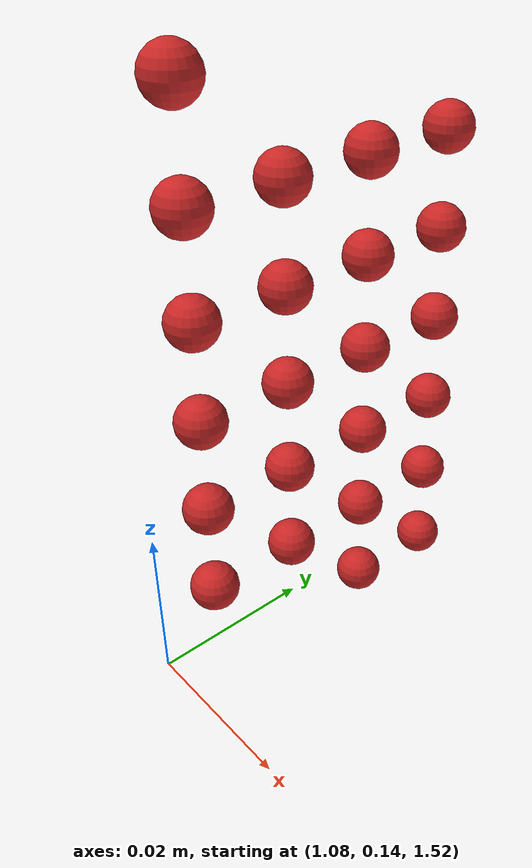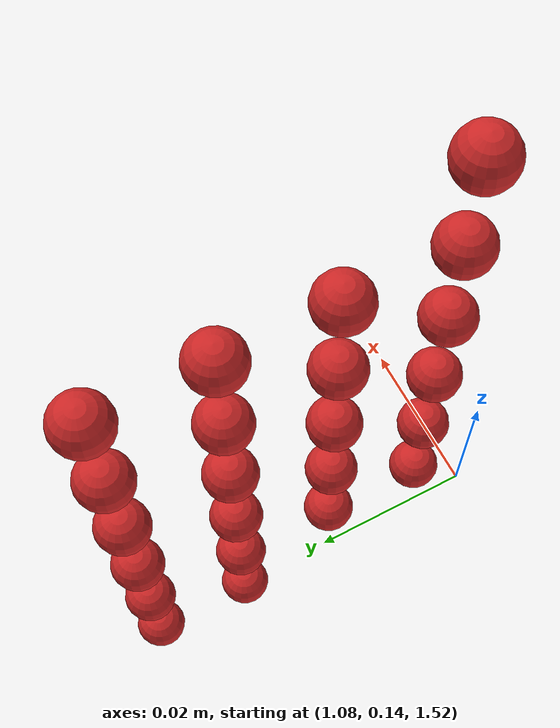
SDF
<sdf version="1.4">
 <world name="default">
  <model name="ground_plane">
   <static>1</static>
   <link name="link">
    <collision name="collision">
     <geometry><plane><normal>0 0 1</normal><size>100 100</size></plane></geometry>
     <surface><friction><ode><mu>100</mu><mu2>50</mu2></ode></friction></surface>
    </collision>
    <visual name="visual">
     <cast_shadows>0</cast_shadows>
     <geometry><plane><normal>0 0 1</normal><size>100 100</size></plane></geometry>
     <material>
      <script><uri>file://media/materials/scripts/gazebo.material</uri><name>Gazebo/Grey</name></script>
     </material>
    </visual>
    <velocity_decay><linear>0</linear><angular>0</angular></velocity_decay>
   </link>
  </model>
  <model name="sphere72">
   <pose>0.546545 0.091517 0.758885 0 0 0</pose>
   <link name="link">
    <pose>0.534545 0.079517 0.758885 0 0 0</pose>
    <inertial>
     <mass>0.001</mass>
     <inertia>
      <ixx>0.004</ixx>
      <ixy>0.000000</ixy>
      <ixz>0.000000</ixz>
      <iyy>0.004</iyy>
      <iyz>0.000000</iyz>
      <izz>0.004</izz>
     </inertia>
    </inertial>
    <collision name="collision">
     <surface>
      <contact><ode><kp>10000000000.000000</kp><kd>1</kd></ode></contact>
      <friction><ode><mu>0.01</mu><mu2>0.01</mu2></ode></friction>
     </surface>
     <geometry><sphere><radius>0.003</radius></sphere></geometry>
    </collision>
    <visual name="visual">
     <geometry><sphere><radius>0.003</radius></sphere></geometry>
     <material>
      <script><uri>file://media/materials/scripts/gazebo.material</uri><name>Gazebo/Red</name></script>
     </material>
    </visual>
   </link>
  </model>
  <model name="sphere76">
   <pose>0.546545 0.097517 0.758885 0 0 0</pose>
   <link name="link">
    <pose>0.534545 0.085517 0.758885 0 0 0</pose>
    <inertial>
     <mass>0.001</mass>
     <inertia>
      <ixx>0.004</ixx>
      <ixy>0.000000</ixy>
      <ixz>0.000000</ixz>
      <iyy>0.004</iyy>
      <iyz>0.000000</iyz>
      <izz>0.004</izz>
     </inertia>
    </inertial>
    <collision name="collision">
     <surface>
      <contact><ode><kp>10000000000.000000</kp><kd>1</kd></ode></contact>
      <friction><ode><mu>0.01</mu><mu2>0.01</mu2></ode></friction>
     </surface>
     <geometry><sphere><radius>0.003</radius></sphere></geometry>
    </collision>
    <visual name="visual">
     <geometry><sphere><radius>0.003</radius></sphere></geometry>
     <material>
      <script><uri>file://media/materials/scripts/gazebo.material</uri><name>Gazebo/Red</name></script>
     </material>
    </visual>
   </link>
  </model>
  <model name="sphere80">
   <pose>0.546545 0.079517 0.764885 0 0 0</pose>
   <link name="link">
    <pose>0.534545 0.067517 0.764885 0 0 0</pose>
    <inertial>
     <mass>0.001</mass>
     <inertia>
      <ixx>0.004</ixx>
      <ixy>0.000000</ixy>
      <ixz>0.000000</ixz>
      <iyy>0.004</iyy>
      <iyz>0.000000</iyz>
      <izz>0.004</izz>
     </inertia>
    </inertial>
    <collision name="collision">
     <surface>
      <contact><ode><kp>10000000000.000000</kp><kd>1</kd></ode></contact>
      <friction><ode><mu>0.01</mu><mu2>0.01</mu2></ode></friction>
     </surface>
     <geometry><sphere><radius>0.003</radius></sphere></geometry>
    </collision>
    <visual name="visual">
     <geometry><sphere><radius>0.003</radius></sphere></geometry>
     <material>
      <script><uri>file://media/materials/scripts/gazebo.material</uri><name>Gazebo/Red</name></script>
     </material>
    </visual>
   </link>
  </model>
  <model name="sphere84">
   <pose>0.546545 0.085517 0.764885 0 0 0</pose>
   <link name="link">
    <pose>0.534545 0.073517 0.764885 0 0 0</pose>
    <inertial>
     <mass>0.001</mass>
     <inertia>
      <ixx>0.004</ixx>
      <ixy>0.000000</ixy>
      <ixz>0.000000</ixz>
      <iyy>0.004</iyy>
      <iyz>0.000000</iyz>
      <izz>0.004</izz>
     </inertia>
    </inertial>
    <collision name="collision">
     <surface>
      <contact><ode><kp>10000000000.000000</kp><kd>1</kd></ode></contact>
      <friction><ode><mu>0.01</mu><mu2>0.01</mu2></ode></friction>
     </surface>
     <geometry><sphere><radius>0.003</radius></sphere></geometry>
    </collision>
    <visual name="visual">
     <geometry><sphere><radius>0.003</radius></sphere></geometry>
     <material>
      <script><uri>file://media/materials/scripts/gazebo.material</uri><name>Gazebo/Red</name></script>
     </material>
    </visual>
   </link>
  </model>
  <model name="sphere88">
   <pose>0.546545 0.091517 0.764885 0 0 0</pose>
   <link name="link">
    <pose>0.534545 0.079517 0.764885 0 0 0</pose>
    <inertial>
     <mass>0.001</mass>
     <inertia>
      <ixx>0.004</ixx>
      <ixy>0.000000</ixy>
      <ixz>0.000000</ixz>
      <iyy>0.004</iyy>
      <iyz>0.000000</iyz>
      <izz>0.004</izz>
     </inertia>
    </inertial>
    <collision name="collision">
     <surface>
      <contact><ode><kp>10000000000.000000</kp><kd>1</kd></ode></contact>
      <friction><ode><mu>0.01</mu><mu2>0.01</mu2></ode></friction>
     </surface>
     <geometry><sphere><radius>0.003</radius></sphere></geometry>
    </collision>
    <visual name="visual">
     <geometry><sphere><radius>0.003</radius></sphere></geometry>
     <material>
      <script><uri>file://media/materials/scripts/gazebo.material</uri><name>Gazebo/Red</name></script>
     </material>
    </visual>
   </link>
  </model>
  <model name="sphere92">
   <pose>0.546545 0.097517 0.764885 0 0 0</pose>
   <link name="link">
    <pose>0.534545 0.085517 0.764885 0 0 0</pose>
    <inertial>
     <mass>0.001</mass>
     <inertia>
      <ixx>0.004</ixx>
      <ixy>0.000000</ixy>
      <ixz>0.000000</ixz>
      <iyy>0.004</iyy>
      <iyz>0.000000</iyz>
      <izz>0.004</izz>
     </inertia>
    </inertial>
    <collision name="collision">
     <surface>
      <contact><ode><kp>10000000000.000000</kp><kd>1</kd></ode></contact>
      <friction><ode><mu>0.01</mu><mu2>0.01</mu2></ode></friction>
     </surface>
     <geometry><sphere><radius>0.003</radius></sphere></geometry>
    </collision>
    <visual name="visual">
     <geometry><sphere><radius>0.003</radius></sphere></geometry>
     <material>
      <script><uri>file://media/materials/scripts/gazebo.material</uri><name>Gazebo/Red</name></script>
     </material>
    </visual>
   </link>
  </model>
  <model name="sphere96">
   <pose>0.546545 0.079517 0.770885 0 0 0</pose>
   <link name="link">
    <pose>0.534545 0.067517 0.770885 0 0 0</pose>
    <inertial>
     <mass>0.001</mass>
     <inertia>
      <ixx>0.004</ixx>
      <ixy>0.000000</ixy>
      <ixz>0.000000</ixz>
      <iyy>0.004</iyy>
      <iyz>0.000000</iyz>
      <izz>0.004</izz>
     </inertia>
    </inertial>
    <collision name="collision">
     <surface>
      <contact><ode><kp>10000000000.000000</kp><kd>1</kd></ode></contact>
      <friction><ode><mu>0.01</mu><mu2>0.01</mu2></ode></friction>
     </surface>
     <geometry><sphere><radius>0.003</radius></sphere></geometry>
    </collision>
    <visual name="visual">
     <geometry><sphere><radius>0.003</radius></sphere></geometry>
     <material>
      <script><uri>file://media/materials/scripts/gazebo.material</uri><name>Gazebo/Red</name></script>
     </material>
    </visual>
   </link>
  </model>
  <model name="sphere100">
   <pose>0.546545 0.085517 0.770885 0 0 0</pose>
   <link name="link">
    <pose>0.534545 0.073517 0.770885 0 0 0</pose>
    <inertial>
     <mass>0.001</mass>
     <inertia>
      <ixx>0.004</ixx>
      <ixy>0.000000</ixy>
      <ixz>0.000000</ixz>
      <iyy>0.004</iyy>
      <iyz>0.000000</iyz>
      <izz>0.004</izz>
     </inertia>
    </inertial>
    <collision name="collision">
     <surface>
      <contact><ode><kp>10000000000.000000</kp><kd>1</kd></ode></contact>
      <friction><ode><mu>0.01</mu><mu2>0.01</mu2></ode></friction>
     </surface>
     <geometry><sphere><radius>0.003</radius></sphere></geometry>
    </collision>
    <visual name="visual">
     <geometry><sphere><radius>0.003</radius></sphere></geometry>
     <material>
      <script><uri>file://media/materials/scripts/gazebo.material</uri><name>Gazebo/Red</name></script>
     </material>
    </visual>
   </link>
  </model>
  <model name="sphere104">
   <pose>0.546545 0.091517 0.770885 0 0 0</pose>
   <link name="link">
    <pose>0.534545 0.079517 0.770885 0 0 0</pose>
    <inertial>
     <mass>0.001</mass>
     <inertia>
      <ixx>0.004</ixx>
      <ixy>0.000000</ixy>
      <ixz>0.000000</ixz>
      <iyy>0.004</iyy>
      <iyz>0.000000</iyz>
      <izz>0.004</izz>
     </inertia>
    </inertial>
    <collision name="collision">
     <surface>
      <contact><ode><kp>10000000000.000000</kp><kd>1</kd></ode></contact>
      <friction><ode><mu>0.01</mu><mu2>0.01</mu2></ode></friction>
     </surface>
     <geometry><sphere><radius>0.003</radius></sphere></geometry>
    </collision>
    <visual name="visual">
     <geometry><sphere><radius>0.003</radius></sphere></geometry>
     <material>
      <script><uri>file://media/materials/scripts/gazebo.material</uri><name>Gazebo/Red</name></script>
     </material>
    </visual>
   </link>
  </model>
  <model name="sphere108">
   <pose>0.546545 0.097517 0.770885 0 0 0</pose>
   <link name="link">
    <pose>0.534545 0.085517 0.770885 0 0 0</pose>
    <inertial>
     <mass>0.001</mass>
     <inertia>
      <ixx>0.004</ixx>
      <ixy>0.000000</ixy>
      <ixz>0.000000</ixz>
      <iyy>0.004</iyy>
      <iyz>0.000000</iyz>
      <izz>0.004</izz>
     </inertia>
    </inertial>
    <collision name="collision">
     <surface>
      <contact><ode><kp>10000000000.000000</kp><kd>1</kd></ode></contact>
      <friction><ode><mu>0.01</mu><mu2>0.01</mu2></ode></friction>
     </surface>
     <geometry><sphere><radius>0.003</radius></sphere></geometry>
    </collision>
    <visual name="visual">
     <geometry><sphere><radius>0.003</radius></sphere></geometry>
     <material>
      <script><uri>file://media/materials/scripts/gazebo.material</uri><name>Gazebo/Red</name></script>
     </material>
    </visual>
   </link>
  </model>
  <model name="sphere112">
   <pose>0.546545 0.079517 0.776885 0 0 0</pose>
   <link name="link">
    <pose>0.534545 0.067517 0.776885 0 0 0</pose>
    <inertial>
     <mass>0.001</mass>
     <inertia>
      <ixx>0.004</ixx>
      <ixy>0.000000</ixy>
      <ixz>0.000000</ixz>
      <iyy>0.004</iyy>
      <iyz>0.000000</iyz>
      <izz>0.004</izz>
     </inertia>
    </inertial>
    <collision name="collision">
     <surface>
      <contact><ode><kp>10000000000.000000</kp><kd>1</kd></ode></contact>
      <friction><ode><mu>0.01</mu><mu2>0.01</mu2></ode></friction>
     </surface>
     <geometry><sphere><radius>0.003</radius></sphere></geometry>
    </collision>
    <visual name="visual">
     <geometry><sphere><radius>0.003</radius></sphere></geometry>
     <material>
      <script><uri>file://media/materials/scripts/gazebo.material</uri><name>Gazebo/Red</name></script>
     </material>
    </visual>
   </link>
  </model>
  <model name="sphere116">
   <pose>0.546545 0.085517 0.776885 0 0 0</pose>
   <link name="link">
    <pose>0.534545 0.073517 0.776885 0 0 0</pose>
    <inertial>
     <mass>0.001</mass>
     <inertia>
      <ixx>0.004</ixx>
      <ixy>0.000000</ixy>
      <ixz>0.000000</ixz>
      <iyy>0.004</iyy>
      <iyz>0.000000</iyz>
      <izz>0.004</izz>
     </inertia>
    </inertial>
    <collision name="collision">
     <surface>
      <contact><ode><kp>10000000000.000000</kp><kd>1</kd></ode></contact>
      <friction><ode><mu>0.01</mu><mu2>0.01</mu2></ode></friction>
     </surface>
     <geometry><sphere><radius>0.003</radius></sphere></geometry>
    </collision>
    <visual name="visual">
     <geometry><sphere><radius>0.003</radius></sphere></geometry>
     <material>
      <script><uri>file://media/materials/scripts/gazebo.material</uri><name>Gazebo/Red</name></script>
     </material>
    </visual>
   </link>
  </model>
  <model name="sphere120">
   <pose>0.546545 0.091517 0.776885 0 0 0</pose>
   <link name="link">
    <pose>0.534545 0.079517 0.776885 0 0 0</pose>
    <inertial>
     <mass>0.001</mass>
     <inertia>
      <ixx>0.004</ixx>
      <ixy>0.000000</ixy>
      <ixz>0.000000</ixz>
      <iyy>0.004</iyy>
      <iyz>0.000000</iyz>
      <izz>0.004</izz>
     </inertia>
    </inertial>
    <collision name="collision">
     <surface>
      <contact><ode><kp>10000000000.000000</kp><kd>1</kd></ode></contact>
      <friction><ode><mu>0.01</mu><mu2>0.01</mu2></ode></friction>
     </surface>
     <geometry><sphere><radius>0.003</radius></sphere></geometry>
    </collision>
    <visual name="visual">
     <geometry><sphere><radius>0.003</radius></sphere></geometry>
     <material>
      <script><uri>file://media/materials/scripts/gazebo.material</uri><name>Gazebo/Red</name></script>
     </material>
    </visual>
   </link>
  </model>
  <model name="sphere124">
   <pose>0.546545 0.097517 0.776885 0 0 0</pose>
   <link name="link">
    <pose>0.534545 0.085517 0.776885 0 0 0</pose>
    <inertial>
     <mass>0.001</mass>
     <inertia>
      <ixx>0.004</ixx>
      <ixy>0.000000</ixy>
      <ixz>0.000000</ixz>
      <iyy>0.004</iyy>
      <iyz>0.000000</iyz>
      <izz>0.004</izz>
     </inertia>
    </inertial>
    <collision name="collision">
     <surface>
      <contact><ode><kp>10000000000.000000</kp><kd>1</kd></ode></contact>
      <friction><ode><mu>0.01</mu><mu2>0.01</mu2></ode></friction>
     </surface>
     <geometry><sphere><radius>0.003</radius></sphere></geometry>
    </collision>
    <visual name="visual">
     <geometry><sphere><radius>0.003</radius></sphere></geometry>
     <material>
      <script><uri>file://media/materials/scripts/gazebo.material</uri><name>Gazebo/Red</name></script>
     </material>
    </visual>
   </link>
  </model>
  <model name="sphere128">
   <pose>0.546545 0.079517 0.782885 0 0 0</pose>
   <link name="link">
    <pose>0.534545 0.067517 0.782885 0 0 0</pose>
    <inertial>
     <mass>0.001</mass>
     <inertia>
      <ixx>0.004</ixx>
      <ixy>0.000000</ixy>
      <ixz>0.000000</ixz>
      <iyy>0.004</iyy>
      <iyz>0.000000</iyz>
      <izz>0.004</izz>
     </inertia>
    </inertial>
    <collision name="collision">
     <surface>
      <contact><ode><kp>10000000000.000000</kp><kd>1</kd></ode></contact>
      <friction><ode><mu>0.01</mu><mu2>0.01</mu2></ode></friction>
     </surface>
     <geometry><sphere><radius>0.003</radius></sphere></geometry>
    </collision>
    <visual name="visual">
     <geometry><sphere><radius>0.003</radius></sphere></geometry>
     <material>
      <script><uri>file://media/materials/scripts/gazebo.material</uri><name>Gazebo/Red</name></script>
     </material>
    </visual>
   </link>
  </model>
  <model name="sphere132">
   <pose>0.546545 0.085517 0.782885 0 0 0</pose>
   <link name="link">
    <pose>0.534545 0.073517 0.782885 0 0 0</pose>
    <inertial>
     <mass>0.001</mass>
     <inertia>
      <ixx>0.004</ixx>
      <ixy>0.000000</ixy>
      <ixz>0.000000</ixz>
      <iyy>0.004</iyy>
      <iyz>0.000000</iyz>
      <izz>0.004</izz>
     </inertia>
    </inertial>
    <collision name="collision">
     <surface>
      <contact><ode><kp>10000000000.000000</kp><kd>1</kd></ode></contact>
      <friction><ode><mu>0.01</mu><mu2>0.01</mu2></ode></friction>
     </surface>
     <geometry><sphere><radius>0.003</radius></sphere></geometry>
    </collision>
    <visual name="visual">
     <geometry><sphere><radius>0.003</radius></sphere></geometry>
     <material>
      <script><uri>file://media/materials/scripts/gazebo.material</uri><name>Gazebo/Red</name></script>
     </material>
    </visual>
   </link>
  </model>
  <model name="sphere136">
   <pose>0.546545 0.091517 0.782885 0 0 0</pose>
   <link name="link">
    <pose>0.534545 0.079517 0.782885 0 0 0</pose>
    <inertial>
     <mass>0.001</mass>
     <inertia>
      <ixx>0.004</ixx>
      <ixy>0.000000</ixy>
      <ixz>0.000000</ixz>
      <iyy>0.004</iyy>
      <iyz>0.000000</iyz>
      <izz>0.004</izz>
     </inertia>
    </inertial>
    <collision name="collision">
     <surface>
      <contact><ode><kp>10000000000.000000</kp><kd>1</kd></ode></contact>
      <friction><ode><mu>0.01</mu><mu2>0.01</mu2></ode></friction>
     </surface>
     <geometry><sphere><radius>0.003</radius></sphere></geometry>
    </collision>
    <visual name="visual">
     <geometry><sphere><radius>0.003</radius></sphere></geometry>
     <material>
      <script><uri>file://media/materials/scripts/gazebo.material</uri><name>Gazebo/Red</name></script>
     </material>
    </visual>
   </link>
  </model>
  <model name="sphere140">
   <pose>0.546545 0.097517 0.782885 0 0 0</pose>
   <link name="link">
    <pose>0.534545 0.085517 0.782885 0 0 0</pose>
    <inertial>
     <mass>0.001</mass>
     <inertia>
      <ixx>0.004</ixx>
      <ixy>0.000000</ixy>
      <ixz>0.000000</ixz>
      <iyy>0.004</iyy>
      <iyz>0.000000</iyz>
      <izz>0.004</izz>
     </inertia>
    </inertial>
    <collision name="collision">
     <surface>
      <contact><ode><kp>10000000000.000000</kp><kd>1</kd></ode></contact>
      <friction><ode><mu>0.01</mu><mu2>0.01</mu2></ode></friction>
     </surface>
     <geometry><sphere><radius>0.003</radius></sphere></geometry>
    </collision>
    <visual name="visual">
     <geometry><sphere><radius>0.003</radius></sphere></geometry>
     <material>
      <script><uri>file://media/materials/scripts/gazebo.material</uri><name>Gazebo/Red</name></script>
     </material>
    </visual>
   </link>
  </model>
  <model name="sphere144">
   <pose>0.546545 0.079517 0.788885 0 0 0</pose>
   <link name="link">
    <pose>0.534545 0.067517 0.788885 0 0 0</pose>
    <inertial>
     <mass>0.001</mass>
     <inertia>
      <ixx>0.004</ixx>
      <ixy>0.000000</ixy>
      <ixz>0.000000</ixz>
      <iyy>0.004</iyy>
      <iyz>0.000000</iyz>
      <izz>0.004</izz>
     </inertia>
    </inertial>
    <collision name="collision">
     <surface>
      <contact><ode><kp>10000000000.000000</kp><kd>1</kd></ode></contact>
      <friction><ode><mu>0.01</mu><mu2>0.01</mu2></ode></friction>
     </surface>
     <geometry><sphere><radius>0.003</radius></sphere></geometry>
    </collision>
    <visual name="visual">
     <geometry><sphere><radius>0.003</radius></sphere></geometry>
     <material>
      <script><uri>file://media/materials/scripts/gazebo.material</uri><name>Gazebo/Red</name></script>
     </material>
    </visual>
   </link>
  </model>
  <model name="sphere148">
   <pose>0.546545 0.085517 0.788885 0 0 0</pose>
   <link name="link">
    <pose>0.534545 0.073517 0.788885 0 0 0</pose>
    <inertial>
     <mass>0.001</mass>
     <inertia>
      <ixx>0.004</ixx>
      <ixy>0.000000</ixy>
      <ixz>0.000000</ixz>
      <iyy>0.004</iyy>
      <iyz>0.000000</iyz>
      <izz>0.004</izz>
     </inertia>
    </inertial>
    <collision name="collision">
     <surface>
      <contact><ode><kp>10000000000.000000</kp><kd>1</kd></ode></contact>
      <friction><ode><mu>0.01</mu><mu2>0.01</mu2></ode></friction>
     </surface>
     <geometry><sphere><radius>0.003</radius></sphere></geometry>
    </collision>
    <visual name="visual">
     <geometry><sphere><radius>0.003</radius></sphere></geometry>
     <material>
      <script><uri>file://media/materials/scripts/gazebo.material</uri><name>Gazebo/Red</name></script>
     </material>
    </visual>
   </link>
  </model>
  <model name="sphere152">
   <pose>0.546545 0.091517 0.788885 0 0 0</pose>
   <link name="link">
    <pose>0.534545 0.079517 0.788885 0 0 0</pose>
    <inertial>
     <mass>0.001</mass>
     <inertia>
      <ixx>0.004</ixx>
      <ixy>0.000000</ixy>
      <ixz>0.000000</ixz>
      <iyy>0.004</iyy>
      <iyz>0.000000</iyz>
      <izz>0.004</izz>
     </inertia>
    </inertial>
    <collision name="collision">
     <surface>
      <contact><ode><kp>10000000000.000000</kp><kd>1</kd></ode></contact>
      <friction><ode><mu>0.01</mu><mu2>0.01</mu2></ode></friction>
     </surface>
     <geometry><sphere><radius>0.003</radius></sphere></geometry>
    </collision>
    <visual name="visual">
     <geometry><sphere><radius>0.003</radius></sphere></geometry>
     <material>
      <script><uri>file://media/materials/scripts/gazebo.material</uri><name>Gazebo/Red</name></script>
     </material>
    </visual>
   </link>
  </model>
  <model name="sphere156">
   <pose>0.546545 0.097517 0.788885 0 0 0</pose>
   <link name="link">
    <pose>0.534545 0.085517 0.788885 0 0 0</pose>
    <inertial>
     <mass>0.001</mass>
     <inertia>
      <ixx>0.004</ixx>
      <ixy>0.000000</ixy>
      <ixz>0.000000</ixz>
      <iyy>0.004</iyy>
      <iyz>0.000000</iyz>
      <izz>0.004</izz>
     </inertia>
    </inertial>
    <collision name="collision">
     <surface>
      <contact><ode><kp>10000000000.000000</kp><kd>1</kd></ode></contact>
      <friction><ode><mu>0.01</mu><mu2>0.01</mu2></ode></friction>
     </surface>
     <geometry><sphere><radius>0.003</radius></sphere></geometry>
    </collision>
    <visual name="visual">
     <geometry><sphere><radius>0.003</radius></sphere></geometry>
     <material>
      <script><uri>file://media/materials/scripts/gazebo.material</uri><name>Gazebo/Red</name></script>
     </material>
    </visual>
   </link>
  </model>
  <model name="sphere160">
   <pose>0.546545 0.079517 0.794885 0 0 0</pose>
   <link name="link">
    <pose>0.534545 0.067517 0.794885 0 0 0</pose>
    <inertial>
     <mass>0.001</mass>
     <inertia>
      <ixx>0.004</ixx>
      <ixy>0.000000</ixy>
      <ixz>0.000000</ixz>
      <iyy>0.004</iyy>
      <iyz>0.000000</iyz>
      <izz>0.004</izz>
     </inertia>
    </inertial>
    <collision name="collision">
     <surface>
      <contact><ode><kp>10000000000.000000</kp><kd>1</kd></ode></contact>
      <friction><ode><mu>0.01</mu><mu2>0.01</mu2></ode></friction>
     </surface>
     <geometry><sphere><radius>0.003</radius></sphere></geometry>
    </collision>
    <visual name="visual">
     <geometry><sphere><radius>0.003</radius></sphere></geometry>
     <material>
      <script><uri>file://media/materials/scripts/gazebo.material</uri><name>Gazebo/Red</name></script>
     </material>
    </visual>
   </link>
  </model>
 </world>
</sdf>
